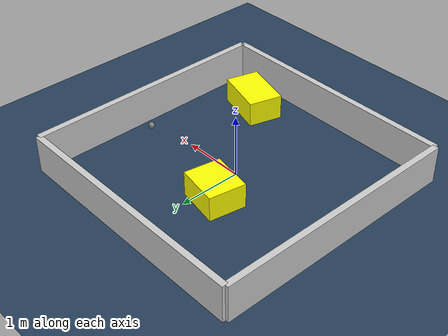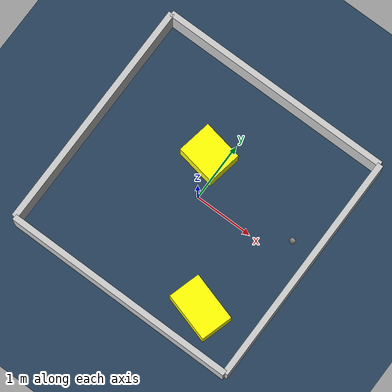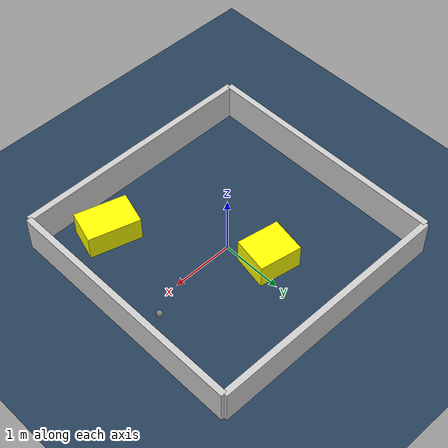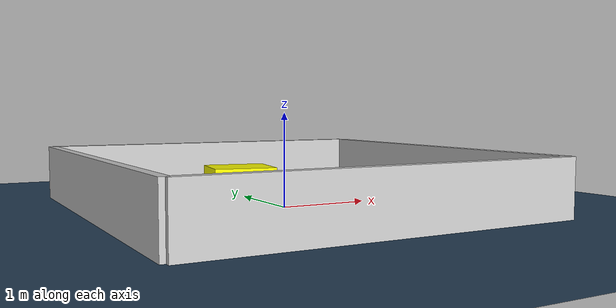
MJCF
<?xml version="1.0" ?>
<mujoco model="generated_environment">
  <option timestep="0.01" integrator="RK4" cone="elliptic"/>
  <default>
    <geom density="1"/>
  </default>
  <asset>
    <texture builtin="gradient" height="3072" rgb1="0.3 0.5 0.7" rgb2="0 0 0" type="skybox" width="512"/>
    <texture builtin="checker" height="300" mark="edge" markrgb="0.8 0.8 0.8" name="groundplane" rgb1="0.2 0.3 0.4" rgb2="0.1 0.2 0.3" type="2d" width="300"/>
    <material name="groundplane" reflectance="0.2" texrepeat="5 5" texture="groundplane" texuniform="true"/>
    <material name="robot" rgba="0.0 1.0 0.0 1"/>
  </asset>
  <worldbody>
    <light dir="0 0 -1" directional="true" pos="0 0 1.5"/>
    <geom condim="4" friction="1.0 0.005 0.001" material="groundplane" name="floor" size="0 0 0.05" type="plane"/>
    <body name="walls">
      <geom name="wall_1" condim="4" pos="-2.0 0.0 0.3" rgba="0.800000011920929 0.800000011920929 0.800000011920929 1.0" size="0.05 2.0 0.3" type="box"/>
      <geom name="wall_2" condim="4" pos="2.0 0.0 0.3" rgba="0.800000011920929 0.800000011920929 0.800000011920929 1.0" size="0.05 2.0 0.3" type="box"/>
      <geom name="wall_3" condim="4" pos="0.0 -2.0 0.3" rgba="0.800000011920929 0.800000011920929 0.800000011920929 1.0" size="2.0 0.05 0.3" type="box"/>
      <geom name="wall_4" condim="4" pos="0.0 2.0 0.3" rgba="0.800000011920929 0.800000011920929 0.800000011920929 1.0" size="2.0 0.05 0.3" type="box"/>
    </body>
    <body name="robot">
      <joint name="joint_x" type="slide" pos="0 0 0" axis="1 0 0"/>
      <joint name="joint_y" type="slide" pos="0 0 0" axis="0 1 0"/>
      <geom name="robot" type="sphere" pos="1.592161386883948 0.2978499669181218 0.2" size="0.05" mass="5." friction="1.0 0.005 0.0001" condim="4"/>
      <site name="sensor_ball"/>
    </body>
    <body name="obstacle_1_movable">
      <geom name="obstacle_1_movable" condim="4" pos="1.0853042260007562 -1.3888763790663852 0.2" euler="0 0 163.7017124466652" friction="1.0 0.005 0.001" rgba="1 1 0 1" size="0.4173904265982382 0.2737565076071891 0.2" type="box" mass="0.1"/>
      <joint type="free"/>
    </body>
    <body name="obstacle_2_movable">
      <geom name="obstacle_2_movable" condim="4" pos="-0.23827025234166332 0.6140486673696284 0.2" euler="0 0 79.78101234747425" friction="1.0 0.005 0.001" rgba="1 1 0 1" size="0.29421790248192525 0.344554038433285 0.2" type="box" mass="0.1"/>
      <joint type="free"/>
    </body>
  </worldbody>
  <actuator>
    <motor name="actuator_x" joint="joint_x" gear="1" ctrlrange="-1 1"/>
    <motor name="actuator_y" joint="joint_y" gear="1" ctrlrange="-1 1"/>
  </actuator>
</mujoco>
